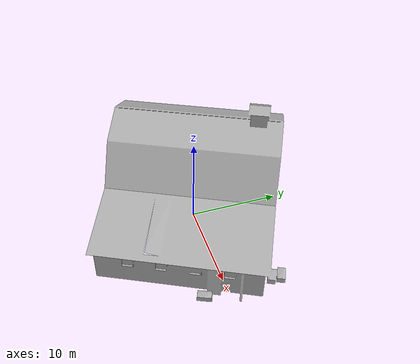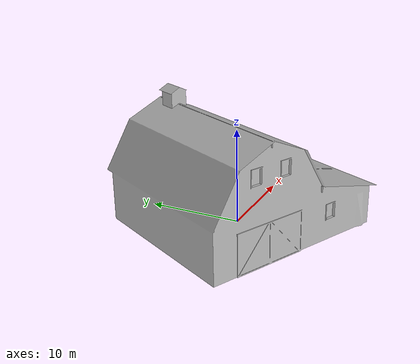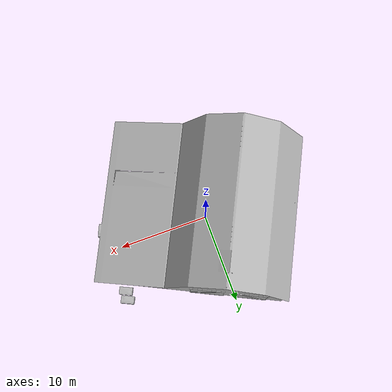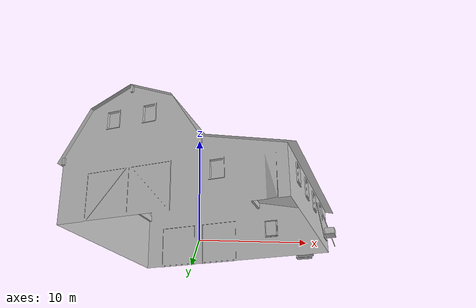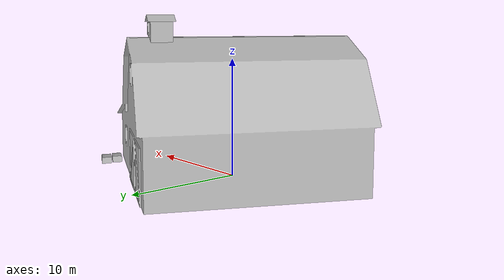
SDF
<sdf version="1.7">
  <model name="farm_barn">
    <static>true</static>
    <link name="farm_barn_link">
      <collision name="farm_barn_collision">
        <geometry>
          <mesh>
            <uri>model://farm_barn/farm_barn.dae</uri>
            <scale>1 1 1</scale>
          </mesh>
        </geometry>
      </collision>
      <visual name="farm_barn_visual">
        <geometry>
          <mesh>
            <uri>model://farm_barn/farm_barn.dae</uri>
            <scale>1 1 1</scale>
          </mesh>
        </geometry>
      </visual>
    </link>
  </model>
</sdf>
